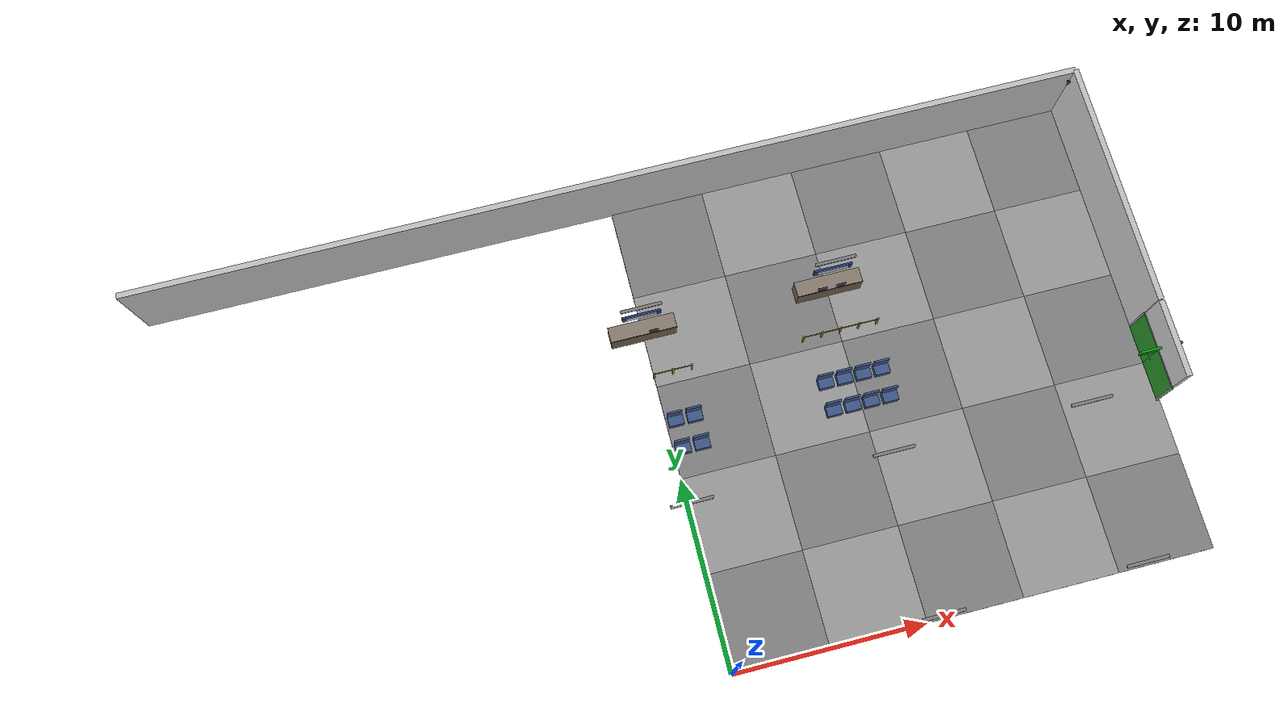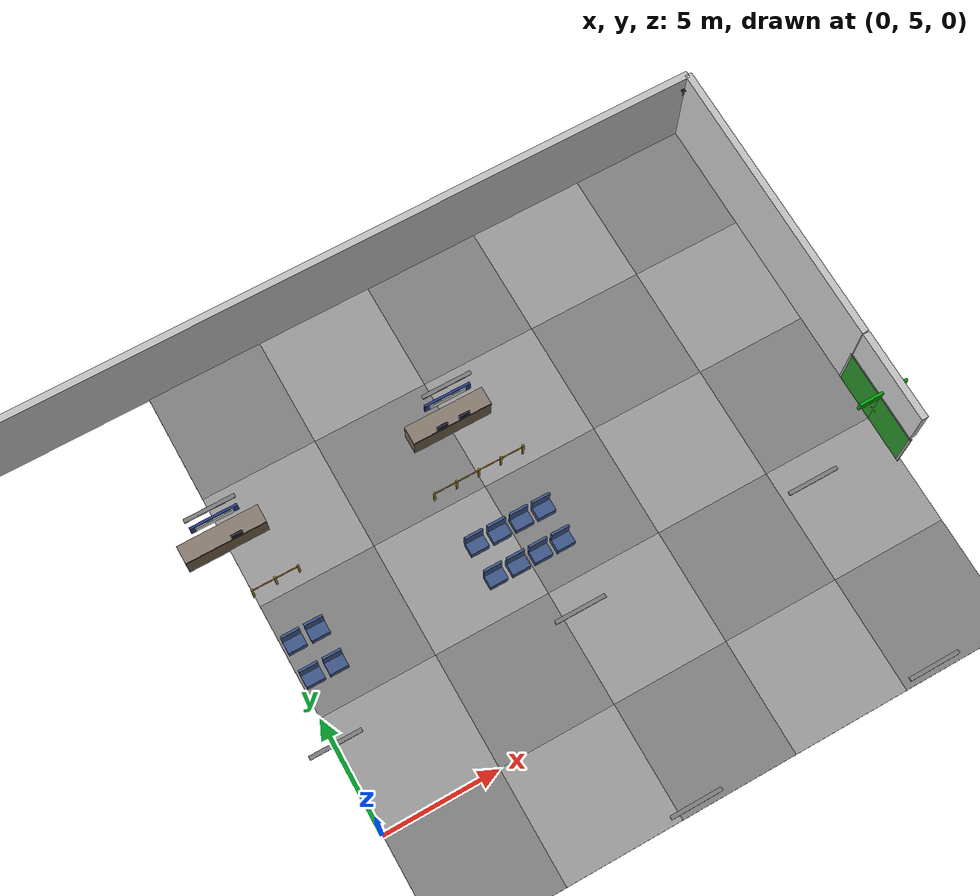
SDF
<sdf version="1.10">
 <world name="my_world">
  <model name="tile_5_5">
   <static>true</static>
   <pose>2.5 2.5 0.05 0 0 0</pose>
   <link name="link">
    <collision name="col">
     <geometry><box><size>5 5 0.1</size></box></geometry>
     <surface><friction><ode><mu>0.8</mu><mu2>0.8</mu2></ode></friction></surface>
    </collision>
    <visual name="vis">
     <geometry><box><size>5 5 0.1</size></box></geometry>
     <material><ambient>0.52 0.52 0.52 1</ambient><diffuse>0.52 0.52 0.52 1</diffuse></material>
    </visual>
   </link>
  </model>
  <model name="tile_5_6">
   <static>true</static>
   <pose>2.5 7.5 0.05 0 0 0</pose>
   <link name="link">
    <collision name="col">
     <geometry><box><size>5 5 0.1</size></box></geometry>
     <surface><friction><ode><mu>0.8</mu><mu2>0.8</mu2></ode></friction></surface>
    </collision>
    <visual name="vis">
     <geometry><box><size>5 5 0.1</size></box></geometry>
     <material><ambient>0.62 0.62 0.62 1</ambient><diffuse>0.62 0.62 0.62 1</diffuse></material>
    </visual>
   </link>
  </model>
  <model name="tile_5_7">
   <static>true</static>
   <pose>2.5 12.5 0.05 0 0 0</pose>
   <link name="link">
    <collision name="col">
     <geometry><box><size>5 5 0.1</size></box></geometry>
     <surface><friction><ode><mu>0.8</mu><mu2>0.8</mu2></ode></friction></surface>
    </collision>
    <visual name="vis">
     <geometry><box><size>5 5 0.1</size></box></geometry>
     <material><ambient>0.52 0.52 0.52 1</ambient><diffuse>0.52 0.52 0.52 1</diffuse></material>
    </visual>
   </link>
  </model>
  <model name="tile_5_8">
   <static>true</static>
   <pose>2.5 17.5 0.05 0 0 0</pose>
   <link name="link">
    <collision name="col">
     <geometry><box><size>5 5 0.1</size></box></geometry>
     <surface><friction><ode><mu>0.8</mu><mu2>0.8</mu2></ode></friction></surface>
    </collision>
    <visual name="vis">
     <geometry><box><size>5 5 0.1</size></box></geometry>
     <material><ambient>0.62 0.62 0.62 1</ambient><diffuse>0.62 0.62 0.62 1</diffuse></material>
    </visual>
   </link>
  </model>
  <model name="tile_5_9">
   <static>true</static>
   <pose>2.5 22.5 0.05 0 0 0</pose>
   <link name="link">
    <collision name="col">
     <geometry><box><size>5 5 0.1</size></box></geometry>
     <surface><friction><ode><mu>0.8</mu><mu2>0.8</mu2></ode></friction></surface>
    </collision>
    <visual name="vis">
     <geometry><box><size>5 5 0.1</size></box></geometry>
     <material><ambient>0.52 0.52 0.52 1</ambient><diffuse>0.52 0.52 0.52 1</diffuse></material>
    </visual>
   </link>
  </model>
  <model name="tile_6_5">
   <static>true</static>
   <pose>7.5 2.5 0.05 0 0 0</pose>
   <link name="link">
    <collision name="col">
     <geometry><box><size>5 5 0.1</size></box></geometry>
     <surface><friction><ode><mu>0.8</mu><mu2>0.8</mu2></ode></friction></surface>
    </collision>
    <visual name="vis">
     <geometry><box><size>5 5 0.1</size></box></geometry>
     <material><ambient>0.62 0.62 0.62 1</ambient><diffuse>0.62 0.62 0.62 1</diffuse></material>
    </visual>
   </link>
  </model>
  <model name="tile_6_6">
   <static>true</static>
   <pose>7.5 7.5 0.05 0 0 0</pose>
   <link name="link">
    <collision name="col">
     <geometry><box><size>5 5 0.1</size></box></geometry>
     <surface><friction><ode><mu>0.8</mu><mu2>0.8</mu2></ode></friction></surface>
    </collision>
    <visual name="vis">
     <geometry><box><size>5 5 0.1</size></box></geometry>
     <material><ambient>0.52 0.52 0.52 1</ambient><diffuse>0.52 0.52 0.52 1</diffuse></material>
    </visual>
   </link>
  </model>
  <model name="tile_6_7">
   <static>true</static>
   <pose>7.5 12.5 0.05 0 0 0</pose>
   <link name="link">
    <collision name="col">
     <geometry><box><size>5 5 0.1</size></box></geometry>
     <surface><friction><ode><mu>0.8</mu><mu2>0.8</mu2></ode></friction></surface>
    </collision>
    <visual name="vis">
     <geometry><box><size>5 5 0.1</size></box></geometry>
     <material><ambient>0.62 0.62 0.62 1</ambient><diffuse>0.62 0.62 0.62 1</diffuse></material>
    </visual>
   </link>
  </model>
  <model name="tile_6_8">
   <static>true</static>
   <pose>7.5 17.5 0.05 0 0 0</pose>
   <link name="link">
    <collision name="col">
     <geometry><box><size>5 5 0.1</size></box></geometry>
     <surface><friction><ode><mu>0.8</mu><mu2>0.8</mu2></ode></friction></surface>
    </collision>
    <visual name="vis">
     <geometry><box><size>5 5 0.1</size></box></geometry>
     <material><ambient>0.52 0.52 0.52 1</ambient><diffuse>0.52 0.52 0.52 1</diffuse></material>
    </visual>
   </link>
  </model>
  <model name="tile_6_9">
   <static>true</static>
   <pose>7.5 22.5 0.05 0 0 0</pose>
   <link name="link">
    <collision name="col">
     <geometry><box><size>5 5 0.1</size></box></geometry>
     <surface><friction><ode><mu>0.8</mu><mu2>0.8</mu2></ode></friction></surface>
    </collision>
    <visual name="vis">
     <geometry><box><size>5 5 0.1</size></box></geometry>
     <material><ambient>0.62 0.62 0.62 1</ambient><diffuse>0.62 0.62 0.62 1</diffuse></material>
    </visual>
   </link>
  </model>
  <model name="tile_7_5">
   <static>true</static>
   <pose>12.5 2.5 0.05 0 0 0</pose>
   <link name="link">
    <collision name="col">
     <geometry><box><size>5 5 0.1</size></box></geometry>
     <surface><friction><ode><mu>0.8</mu><mu2>0.8</mu2></ode></friction></surface>
    </collision>
    <visual name="vis">
     <geometry><box><size>5 5 0.1</size></box></geometry>
     <material><ambient>0.52 0.52 0.52 1</ambient><diffuse>0.52 0.52 0.52 1</diffuse></material>
    </visual>
   </link>
  </model>
  <model name="tile_7_6">
   <static>true</static>
   <pose>12.5 7.5 0.05 0 0 0</pose>
   <link name="link">
    <collision name="col">
     <geometry><box><size>5 5 0.1</size></box></geometry>
     <surface><friction><ode><mu>0.8</mu><mu2>0.8</mu2></ode></friction></surface>
    </collision>
    <visual name="vis">
     <geometry><box><size>5 5 0.1</size></box></geometry>
     <material><ambient>0.62 0.62 0.62 1</ambient><diffuse>0.62 0.62 0.62 1</diffuse></material>
    </visual>
   </link>
  </model>
  <model name="tile_7_7">
   <static>true</static>
   <pose>12.5 12.5 0.05 0 0 0</pose>
   <link name="link">
    <collision name="col">
     <geometry><box><size>5 5 0.1</size></box></geometry>
     <surface><friction><ode><mu>0.8</mu><mu2>0.8</mu2></ode></friction></surface>
    </collision>
    <visual name="vis">
     <geometry><box><size>5 5 0.1</size></box></geometry>
     <material><ambient>0.52 0.52 0.52 1</ambient><diffuse>0.52 0.52 0.52 1</diffuse></material>
    </visual>
   </link>
  </model>
  <model name="tile_7_8">
   <static>true</static>
   <pose>12.5 17.5 0.05 0 0 0</pose>
   <link name="link">
    <collision name="col">
     <geometry><box><size>5 5 0.1</size></box></geometry>
     <surface><friction><ode><mu>0.8</mu><mu2>0.8</mu2></ode></friction></surface>
    </collision>
    <visual name="vis">
     <geometry><box><size>5 5 0.1</size></box></geometry>
     <material><ambient>0.62 0.62 0.62 1</ambient><diffuse>0.62 0.62 0.62 1</diffuse></material>
    </visual>
   </link>
  </model>
  <model name="tile_7_9">
   <static>true</static>
   <pose>12.5 22.5 0.05 0 0 0</pose>
   <link name="link">
    <collision name="col">
     <geometry><box><size>5 5 0.1</size></box></geometry>
     <surface><friction><ode><mu>0.8</mu><mu2>0.8</mu2></ode></friction></surface>
    </collision>
    <visual name="vis">
     <geometry><box><size>5 5 0.1</size></box></geometry>
     <material><ambient>0.52 0.52 0.52 1</ambient><diffuse>0.52 0.52 0.52 1</diffuse></material>
    </visual>
   </link>
  </model>
  <model name="tile_8_5">
   <static>true</static>
   <pose>17.5 2.5 0.05 0 0 0</pose>
   <link name="link">
    <collision name="col">
     <geometry><box><size>5 5 0.1</size></box></geometry>
     <surface><friction><ode><mu>0.8</mu><mu2>0.8</mu2></ode></friction></surface>
    </collision>
    <visual name="vis">
     <geometry><box><size>5 5 0.1</size></box></geometry>
     <material><ambient>0.62 0.62 0.62 1</ambient><diffuse>0.62 0.62 0.62 1</diffuse></material>
    </visual>
   </link>
  </model>
  <model name="tile_8_6">
   <static>true</static>
   <pose>17.5 7.5 0.05 0 0 0</pose>
   <link name="link">
    <collision name="col">
     <geometry><box><size>5 5 0.1</size></box></geometry>
     <surface><friction><ode><mu>0.8</mu><mu2>0.8</mu2></ode></friction></surface>
    </collision>
    <visual name="vis">
     <geometry><box><size>5 5 0.1</size></box></geometry>
     <material><ambient>0.52 0.52 0.52 1</ambient><diffuse>0.52 0.52 0.52 1</diffuse></material>
    </visual>
   </link>
  </model>
  <model name="tile_8_7">
   <static>true</static>
   <pose>17.5 12.5 0.05 0 0 0</pose>
   <link name="link">
    <collision name="col">
     <geometry><box><size>5 5 0.1</size></box></geometry>
     <surface><friction><ode><mu>0.8</mu><mu2>0.8</mu2></ode></friction></surface>
    </collision>
    <visual name="vis">
     <geometry><box><size>5 5 0.1</size></box></geometry>
     <material><ambient>0.62 0.62 0.62 1</ambient><diffuse>0.62 0.62 0.62 1</diffuse></material>
    </visual>
   </link>
  </model>
  <model name="tile_8_8">
   <static>true</static>
   <pose>17.5 17.5 0.05 0 0 0</pose>
   <link name="link">
    <collision name="col">
     <geometry><box><size>5 5 0.1</size></box></geometry>
     <surface><friction><ode><mu>0.8</mu><mu2>0.8</mu2></ode></friction></surface>
    </collision>
    <visual name="vis">
     <geometry><box><size>5 5 0.1</size></box></geometry>
     <material><ambient>0.52 0.52 0.52 1</ambient><diffuse>0.52 0.52 0.52 1</diffuse></material>
    </visual>
   </link>
  </model>
  <model name="tile_8_9">
   <static>true</static>
   <pose>17.5 22.5 0.05 0 0 0</pose>
   <link name="link">
    <collision name="col">
     <geometry><box><size>5 5 0.1</size></box></geometry>
     <surface><friction><ode><mu>0.8</mu><mu2>0.8</mu2></ode></friction></surface>
    </collision>
    <visual name="vis">
     <geometry><box><size>5 5 0.1</size></box></geometry>
     <material><ambient>0.62 0.62 0.62 1</ambient><diffuse>0.62 0.62 0.62 1</diffuse></material>
    </visual>
   </link>
  </model>
  <model name="tile_9_5">
   <static>true</static>
   <pose>22.5 2.5 0.05 0 0 0</pose>
   <link name="link">
    <collision name="col">
     <geometry><box><size>5 5 0.1</size></box></geometry>
     <surface><friction><ode><mu>0.8</mu><mu2>0.8</mu2></ode></friction></surface>
    </collision>
    <visual name="vis">
     <geometry><box><size>5 5 0.1</size></box></geometry>
     <material><ambient>0.52 0.52 0.52 1</ambient><diffuse>0.52 0.52 0.52 1</diffuse></material>
    </visual>
   </link>
  </model>
  <model name="tile_9_6">
   <static>true</static>
   <pose>22.5 7.5 0.05 0 0 0</pose>
   <link name="link">
    <collision name="col">
     <geometry><box><size>5 5 0.1</size></box></geometry>
     <surface><friction><ode><mu>0.8</mu><mu2>0.8</mu2></ode></friction></surface>
    </collision>
    <visual name="vis">
     <geometry><box><size>5 5 0.1</size></box></geometry>
     <material><ambient>0.62 0.62 0.62 1</ambient><diffuse>0.62 0.62 0.62 1</diffuse></material>
    </visual>
   </link>
  </model>
  <model name="tile_9_7">
   <static>true</static>
   <pose>22.5 12.5 0.05 0 0 0</pose>
   <link name="link">
    <collision name="col">
     <geometry><box><size>5 5 0.1</size></box></geometry>
     <surface><friction><ode><mu>0.8</mu><mu2>0.8</mu2></ode></friction></surface>
    </collision>
    <visual name="vis">
     <geometry><box><size>5 5 0.1</size></box></geometry>
     <material><ambient>0.52 0.52 0.52 1</ambient><diffuse>0.52 0.52 0.52 1</diffuse></material>
    </visual>
   </link>
  </model>
  <model name="tile_9_8">
   <static>true</static>
   <pose>22.5 17.5 0.05 0 0 0</pose>
   <link name="link">
    <collision name="col">
     <geometry><box><size>5 5 0.1</size></box></geometry>
     <surface><friction><ode><mu>0.8</mu><mu2>0.8</mu2></ode></friction></surface>
    </collision>
    <visual name="vis">
     <geometry><box><size>5 5 0.1</size></box></geometry>
     <material><ambient>0.62 0.62 0.62 1</ambient><diffuse>0.62 0.62 0.62 1</diffuse></material>
    </visual>
   </link>
  </model>
  <model name="tile_9_9">
   <static>true</static>
   <pose>22.5 22.5 0.05 0 0 0</pose>
   <link name="link">
    <collision name="col">
     <geometry><box><size>5 5 0.1</size></box></geometry>
     <surface><friction><ode><mu>0.8</mu><mu2>0.8</mu2></ode></friction></surface>
    </collision>
    <visual name="vis">
     <geometry><box><size>5 5 0.1</size></box></geometry>
     <material><ambient>0.52 0.52 0.52 1</ambient><diffuse>0.52 0.52 0.52 1</diffuse></material>
    </visual>
   </link>
  </model>
  <model name="wall_north">
   <static>true</static>
   <pose>0 25 2.25 0 0 0</pose>
   <link name="link">
    <collision name="col"><geometry><box><size>50 0.3 4.5</size></box></geometry></collision>
    <visual name="vis">
     <geometry><box><size>50 0.3 4.5</size></box></geometry>
     <material><ambient>0.78 0.78 0.78 1</ambient><diffuse>0.78 0.78 0.78 1</diffuse></material>
    </visual>
   </link>
  </model>
  <model name="wall_east_n">
   <static>true</static>
   <pose>25 18.525 2.25 0 0 0</pose>
   <link name="link">
    <collision name="col"><geometry><box><size>0.3 12.95 4.5</size></box></geometry></collision>
    <visual name="vis">
     <geometry><box><size>0.3 12.95 4.5</size></box></geometry>
     <material><ambient>0.78 0.78 0.78 1</ambient><diffuse>0.78 0.78 0.78 1</diffuse></material>
    </visual>
   </link>
  </model>
  <model name="wall_east_top">
   <static>true</static>
   <pose>25 10 3.45 0 0 0</pose>
   <link name="link">
    <collision name="col"><geometry><box><size>0.3 4 2.1</size></box></geometry></collision>
    <visual name="vis">
     <geometry><box><size>0.3 4 2.1</size></box></geometry>
     <material><ambient>0.78 0.78 0.78 1</ambient><diffuse>0.78 0.78 0.78 1</diffuse></material>
    </visual>
   </link>
  </model>
  <model name="exit_east_door_l">
   <static>true</static>
   <pose>24.87 9.0 1.2 0 0 0</pose>
   <link name="link">
    <collision name="col"><geometry><box><size>0.06 2.0 2.4</size></box></geometry></collision>
    <visual name="vis">
     <geometry><box><size>0.06 2.0 2.4</size></box></geometry>
     <material><ambient>0.15 0.55 0.15 1</ambient><diffuse>0.15 0.55 0.15 1</diffuse></material>
    </visual>
   </link>
  </model>
  <model name="exit_east_door_r">
   <static>true</static>
   <pose>24.87 11.0 1.2 0 0 0</pose>
   <link name="link">
    <collision name="col"><geometry><box><size>0.06 2.0 2.4</size></box></geometry></collision>
    <visual name="vis">
     <geometry><box><size>0.06 2.0 2.4</size></box></geometry>
     <material><ambient>0.15 0.55 0.15 1</ambient><diffuse>0.15 0.55 0.15 1</diffuse></material>
    </visual>
   </link>
  </model>
  <model name="exit_east_handle_l">
   <static>true</static>
   <pose>24.87 9.9 1.1 0 0 0</pose>
   <link name="link">
    <visual name="vis">
     <geometry><box><size>0.08 0.06 0.06</size></box></geometry>
     <material><ambient>0.7 0.6 0.1 1</ambient><diffuse>0.7 0.6 0.1 1</diffuse></material>
    </visual>
   </link>
  </model>
  <model name="exit_east_handle_r">
   <static>true</static>
   <pose>24.87 10.1 1.1 0 0 0</pose>
   <link name="link">
    <visual name="vis">
     <geometry><box><size>0.08 0.06 0.06</size></box></geometry>
     <material><ambient>0.7 0.6 0.1 1</ambient><diffuse>0.7 0.6 0.1 1</diffuse></material>
    </visual>
   </link>
  </model>
  <model name="exit_east_sign">
   <static>true</static>
   <pose>24.87 10 2.7 0 0 0</pose>
   <link name="link">
    <visual name="vis">
     <geometry><box><size>2.2 0.12 0.45</size></box></geometry>
     <material><ambient>0.05 0.65 0.05 1</ambient><diffuse>0.05 0.65 0.05 1</diffuse></material>
    </visual>
   </link>
  </model>
  <model name="exit_east_sign_txt">
   <static>true</static>
   <pose>24.87 10 2.7 0 0 0</pose>
   <link name="link">
    <visual name="vis">
     <geometry><box><size>1.8 0.05 0.28</size></box></geometry>
     <material><ambient>0.92 0.92 0.92 1</ambient><diffuse>0.92 0.92 0.92 1</diffuse></material>
    </visual>
   </link>
  </model>
  <model name="exit_east_frame_l">
   <static>true</static>
   <pose>24.87 7.95 1.2 0 0 0</pose>
   <link name="link">
    <collision name="col"><geometry><box><size>0.06 0.1 2.4</size></box></geometry></collision>
    <visual name="vis">
     <geometry><box><size>0.06 0.1 2.4</size></box></geometry>
     <material><ambient>0.6 0.6 0.6 1</ambient><diffuse>0.6 0.6 0.6 1</diffuse></material>
    </visual>
   </link>
  </model>
  <model name="exit_east_frame_r">
   <static>true</static>
   <pose>24.87 12.05 1.2 0 0 0</pose>
   <link name="link">
    <collision name="col"><geometry><box><size>0.06 0.1 2.4</size></box></geometry></collision>
    <visual name="vis">
     <geometry><box><size>0.06 0.1 2.4</size></box></geometry>
     <material><ambient>0.6 0.6 0.6 1</ambient><diffuse>0.6 0.6 0.6 1</diffuse></material>
    </visual>
   </link>
  </model>
  <model name="exit_east_frame_t">
   <static>true</static>
   <pose>24.87 10 2.45 0 0 0</pose>
   <link name="link">
    <visual name="vis">
     <geometry><box><size>0.06 4.2 0.1</size></box></geometry>
     <material><ambient>0.6 0.6 0.6 1</ambient><diffuse>0.6 0.6 0.6 1</diffuse></material>
    </visual>
   </link>
  </model>
  <model name="gate_a2_counter">
   <static>true</static>
   <pose>0 18 0.55 0 0 0</pose>
   <link name="link">
    <collision name="col"><geometry><box><size>3.5 0.8 1.1</size></box></geometry></collision>
    <visual name="vis">
     <geometry><box><size>3.5 0.8 1.1</size></box></geometry>
     <material><ambient>0.45 0.38 0.3 1</ambient><diffuse>0.45 0.38 0.3 1</diffuse></material>
    </visual>
   </link>
  </model>
  <model name="gate_a2_counter_top">
   <static>true</static>
   <pose>0 18 1.15 0 0 0</pose>
   <link name="link">
    <collision name="col"><geometry><box><size>3.5 0.8 0.08</size></box></geometry></collision>
    <visual name="vis">
     <geometry><box><size>3.5 0.8 0.08</size></box></geometry>
     <material><ambient>0.55 0.5 0.45 1</ambient><diffuse>0.55 0.5 0.45 1</diffuse></material>
    </visual>
   </link>
  </model>
  <model name="gate_a2_monitor2">
   <static>true</static>
   <pose>0.5 17.55 1.6 0 0 0</pose>
   <link name="link">
    <visual name="vis">
     <geometry><box><size>0.5 0.05 0.4</size></box></geometry>
     <material><ambient>0.1 0.1 0.15 1</ambient><diffuse>0.1 0.1 0.15 1</diffuse></material>
    </visual>
   </link>
  </model>
  <model name="gate_a2_sign">
   <static>true</static>
   <pose>0 18 3.2 0 0 0</pose>
   <link name="link">
    <visual name="vis">
     <geometry><box><size>2.0 0.1 0.5</size></box></geometry>
     <material><ambient>0.15 0.25 0.55 1</ambient><diffuse>0.15 0.25 0.55 1</diffuse></material>
    </visual>
   </link>
  </model>
  <model name="gate_a2_sign_text">
   <static>true</static>
   <pose>0 17.94 3.2 0 0 0</pose>
   <link name="link">
    <visual name="vis">
     <geometry><box><size>1.6 0.05 0.3</size></box></geometry>
     <material><ambient>0.9 0.9 0.9 1</ambient><diffuse>0.9 0.9 0.9 1</diffuse></material>
    </visual>
   </link>
  </model>
  <model name="gate_a2_post_0">
   <static>true</static>
   <pose>0.0 15.5 0.5 0 0 0</pose>
   <link name="link">
    <collision name="col"><geometry><box><size>0.08 0.08 1.0</size></box></geometry></collision>
    <visual name="vis">
     <geometry><box><size>0.08 0.08 1.0</size></box></geometry>
     <material><ambient>0.7 0.6 0.2 1</ambient><diffuse>0.7 0.6 0.2 1</diffuse></material>
    </visual>
   </link>
  </model>
  <model name="gate_a2_post_10">
   <static>true</static>
   <pose>1.0 15.5 0.5 0 0 0</pose>
   <link name="link">
    <collision name="col"><geometry><box><size>0.08 0.08 1.0</size></box></geometry></collision>
    <visual name="vis">
     <geometry><box><size>0.08 0.08 1.0</size></box></geometry>
     <material><ambient>0.7 0.6 0.2 1</ambient><diffuse>0.7 0.6 0.2 1</diffuse></material>
    </visual>
   </link>
  </model>
  <model name="gate_a2_post_20">
   <static>true</static>
   <pose>2.0 15.5 0.5 0 0 0</pose>
   <link name="link">
    <collision name="col"><geometry><box><size>0.08 0.08 1.0</size></box></geometry></collision>
    <visual name="vis">
     <geometry><box><size>0.08 0.08 1.0</size></box></geometry>
     <material><ambient>0.7 0.6 0.2 1</ambient><diffuse>0.7 0.6 0.2 1</diffuse></material>
    </visual>
   </link>
  </model>
  <model name="gate_a2_rope_2">
   <static>true</static>
   <pose>0.5 15.5 0.85 0 0 0</pose>
   <link name="link">
    <visual name="vis">
     <geometry><box><size>1.0 0.04 0.04</size></box></geometry>
     <material><ambient>0.6 0.4 0.1 1</ambient><diffuse>0.6 0.4 0.1 1</diffuse></material>
    </visual>
   </link>
  </model>
  <model name="gate_a2_rope_3">
   <static>true</static>
   <pose>1.5 15.5 0.85 0 0 0</pose>
   <link name="link">
    <visual name="vis">
     <geometry><box><size>1.0 0.04 0.04</size></box></geometry>
     <material><ambient>0.6 0.4 0.1 1</ambient><diffuse>0.6 0.4 0.1 1</diffuse></material>
    </visual>
   </link>
  </model>
  <model name="gate_a2_seat_r0_c2">
   <static>true</static>
   <pose>0.5 13 0.25 0 0 0</pose>
   <link name="link">
    <collision name="col"><geometry><box><size>0.8 0.6 0.5</size></box></geometry></collision>
    <visual name="vis">
     <geometry><box><size>0.8 0.6 0.5</size></box></geometry>
     <material><ambient>0.25 0.35 0.55 1</ambient><diffuse>0.25 0.35 0.55 1</diffuse></material>
    </visual>
   </link>
  </model>
  <model name="gate_a2_seat_r0_c2_back">
   <static>true</static>
   <pose>0.5 13.25 0.7 0 0 0</pose>
   <link name="link">
    <collision name="col"><geometry><box><size>0.8 0.1 0.9</size></box></geometry></collision>
    <visual name="vis">
     <geometry><box><size>0.8 0.1 0.9</size></box></geometry>
     <material><ambient>0.25 0.35 0.55 1</ambient><diffuse>0.25 0.35 0.55 1</diffuse></material>
    </visual>
   </link>
  </model>
  <model name="gate_a2_seat_r0_c3">
   <static>true</static>
   <pose>1.5 13 0.25 0 0 0</pose>
   <link name="link">
    <collision name="col"><geometry><box><size>0.8 0.6 0.5</size></box></geometry></collision>
    <visual name="vis">
     <geometry><box><size>0.8 0.6 0.5</size></box></geometry>
     <material><ambient>0.25 0.35 0.55 1</ambient><diffuse>0.25 0.35 0.55 1</diffuse></material>
    </visual>
   </link>
  </model>
  <model name="gate_a2_seat_r0_c3_back">
   <static>true</static>
   <pose>1.5 13.25 0.7 0 0 0</pose>
   <link name="link">
    <collision name="col"><geometry><box><size>0.8 0.1 0.9</size></box></geometry></collision>
    <visual name="vis">
     <geometry><box><size>0.8 0.1 0.9</size></box></geometry>
     <material><ambient>0.25 0.35 0.55 1</ambient><diffuse>0.25 0.35 0.55 1</diffuse></material>
    </visual>
   </link>
  </model>
  <model name="gate_a2_seat_r1_c2">
   <static>true</static>
   <pose>0.5 11.5 0.25 0 0 0</pose>
   <link name="link">
    <collision name="col"><geometry><box><size>0.8 0.6 0.5</size></box></geometry></collision>
    <visual name="vis">
     <geometry><box><size>0.8 0.6 0.5</size></box></geometry>
     <material><ambient>0.25 0.35 0.55 1</ambient><diffuse>0.25 0.35 0.55 1</diffuse></material>
    </visual>
   </link>
  </model>
  <model name="gate_a2_seat_r1_c2_back">
   <static>true</static>
   <pose>0.5 11.75 0.7 0 0 0</pose>
   <link name="link">
    <collision name="col"><geometry><box><size>0.8 0.1 0.9</size></box></geometry></collision>
    <visual name="vis">
     <geometry><box><size>0.8 0.1 0.9</size></box></geometry>
     <material><ambient>0.25 0.35 0.55 1</ambient><diffuse>0.25 0.35 0.55 1</diffuse></material>
    </visual>
   </link>
  </model>
  <model name="gate_a2_seat_r1_c3">
   <static>true</static>
   <pose>1.5 11.5 0.25 0 0 0</pose>
   <link name="link">
    <collision name="col"><geometry><box><size>0.8 0.6 0.5</size></box></geometry></collision>
    <visual name="vis">
     <geometry><box><size>0.8 0.6 0.5</size></box></geometry>
     <material><ambient>0.25 0.35 0.55 1</ambient><diffuse>0.25 0.35 0.55 1</diffuse></material>
    </visual>
   </link>
  </model>
  <model name="gate_a2_seat_r1_c3_back">
   <static>true</static>
   <pose>1.5 11.75 0.7 0 0 0</pose>
   <link name="link">
    <collision name="col"><geometry><box><size>0.8 0.1 0.9</size></box></geometry></collision>
    <visual name="vis">
     <geometry><box><size>0.8 0.1 0.9</size></box></geometry>
     <material><ambient>0.25 0.35 0.55 1</ambient><diffuse>0.25 0.35 0.55 1</diffuse></material>
    </visual>
   </link>
  </model>
  <model name="gate_a3_counter">
   <static>true</static>
   <pose>10 18 0.55 0 0 0</pose>
   <link name="link">
    <collision name="col"><geometry><box><size>3.5 0.8 1.1</size></box></geometry></collision>
    <visual name="vis">
     <geometry><box><size>3.5 0.8 1.1</size></box></geometry>
     <material><ambient>0.45 0.38 0.3 1</ambient><diffuse>0.45 0.38 0.3 1</diffuse></material>
    </visual>
   </link>
  </model>
  <model name="gate_a3_counter_top">
   <static>true</static>
   <pose>10 18 1.15 0 0 0</pose>
   <link name="link">
    <collision name="col"><geometry><box><size>3.5 0.8 0.08</size></box></geometry></collision>
    <visual name="vis">
     <geometry><box><size>3.5 0.8 0.08</size></box></geometry>
     <material><ambient>0.55 0.5 0.45 1</ambient><diffuse>0.55 0.5 0.45 1</diffuse></material>
    </visual>
   </link>
  </model>
  <model name="gate_a3_monitor">
   <static>true</static>
   <pose>9.5 17.55 1.6 0 0 0</pose>
   <link name="link">
    <visual name="vis">
     <geometry><box><size>0.5 0.05 0.4</size></box></geometry>
     <material><ambient>0.1 0.1 0.15 1</ambient><diffuse>0.1 0.1 0.15 1</diffuse></material>
    </visual>
   </link>
  </model>
  <model name="gate_a3_monitor2">
   <static>true</static>
   <pose>10.5 17.55 1.6 0 0 0</pose>
   <link name="link">
    <visual name="vis">
     <geometry><box><size>0.5 0.05 0.4</size></box></geometry>
     <material><ambient>0.1 0.1 0.15 1</ambient><diffuse>0.1 0.1 0.15 1</diffuse></material>
    </visual>
   </link>
  </model>
  <model name="gate_a3_sign">
   <static>true</static>
   <pose>10 18 3.2 0 0 0</pose>
   <link name="link">
    <visual name="vis">
     <geometry><box><size>2.0 0.1 0.5</size></box></geometry>
     <material><ambient>0.15 0.25 0.55 1</ambient><diffuse>0.15 0.25 0.55 1</diffuse></material>
    </visual>
   </link>
  </model>
  <model name="gate_a3_sign_text">
   <static>true</static>
   <pose>10 17.94 3.2 0 0 0</pose>
   <link name="link">
    <visual name="vis">
     <geometry><box><size>1.6 0.05 0.3</size></box></geometry>
     <material><ambient>0.9 0.9 0.9 1</ambient><diffuse>0.9 0.9 0.9 1</diffuse></material>
    </visual>
   </link>
  </model>
  <model name="gate_a3_post_-20">
   <static>true</static>
   <pose>8.0 15.5 0.5 0 0 0</pose>
   <link name="link">
    <collision name="col"><geometry><box><size>0.08 0.08 1.0</size></box></geometry></collision>
    <visual name="vis">
     <geometry><box><size>0.08 0.08 1.0</size></box></geometry>
     <material><ambient>0.7 0.6 0.2 1</ambient><diffuse>0.7 0.6 0.2 1</diffuse></material>
    </visual>
   </link>
  </model>
  <model name="gate_a3_post_-10">
   <static>true</static>
   <pose>9.0 15.5 0.5 0 0 0</pose>
   <link name="link">
    <collision name="col"><geometry><box><size>0.08 0.08 1.0</size></box></geometry></collision>
    <visual name="vis">
     <geometry><box><size>0.08 0.08 1.0</size></box></geometry>
     <material><ambient>0.7 0.6 0.2 1</ambient><diffuse>0.7 0.6 0.2 1</diffuse></material>
    </visual>
   </link>
  </model>
  <model name="gate_a3_post_0">
   <static>true</static>
   <pose>10.0 15.5 0.5 0 0 0</pose>
   <link name="link">
    <collision name="col"><geometry><box><size>0.08 0.08 1.0</size></box></geometry></collision>
    <visual name="vis">
     <geometry><box><size>0.08 0.08 1.0</size></box></geometry>
     <material><ambient>0.7 0.6 0.2 1</ambient><diffuse>0.7 0.6 0.2 1</diffuse></material>
    </visual>
   </link>
  </model>
  <model name="gate_a3_post_10">
   <static>true</static>
   <pose>11.0 15.5 0.5 0 0 0</pose>
   <link name="link">
    <collision name="col"><geometry><box><size>0.08 0.08 1.0</size></box></geometry></collision>
    <visual name="vis">
     <geometry><box><size>0.08 0.08 1.0</size></box></geometry>
     <material><ambient>0.7 0.6 0.2 1</ambient><diffuse>0.7 0.6 0.2 1</diffuse></material>
    </visual>
   </link>
  </model>
  <model name="gate_a3_post_20">
   <static>true</static>
   <pose>12.0 15.5 0.5 0 0 0</pose>
   <link name="link">
    <collision name="col"><geometry><box><size>0.08 0.08 1.0</size></box></geometry></collision>
    <visual name="vis">
     <geometry><box><size>0.08 0.08 1.0</size></box></geometry>
     <material><ambient>0.7 0.6 0.2 1</ambient><diffuse>0.7 0.6 0.2 1</diffuse></material>
    </visual>
   </link>
  </model>
  <model name="gate_a3_rope_0">
   <static>true</static>
   <pose>8.5 15.5 0.85 0 0 0</pose>
   <link name="link">
    <visual name="vis">
     <geometry><box><size>1.0 0.04 0.04</size></box></geometry>
     <material><ambient>0.6 0.4 0.1 1</ambient><diffuse>0.6 0.4 0.1 1</diffuse></material>
    </visual>
   </link>
  </model>
  <model name="gate_a3_rope_1">
   <static>true</static>
   <pose>9.5 15.5 0.85 0 0 0</pose>
   <link name="link">
    <visual name="vis">
     <geometry><box><size>1.0 0.04 0.04</size></box></geometry>
     <material><ambient>0.6 0.4 0.1 1</ambient><diffuse>0.6 0.4 0.1 1</diffuse></material>
    </visual>
   </link>
  </model>
  <model name="gate_a3_rope_2">
   <static>true</static>
   <pose>10.5 15.5 0.85 0 0 0</pose>
   <link name="link">
    <visual name="vis">
     <geometry><box><size>1.0 0.04 0.04</size></box></geometry>
     <material><ambient>0.6 0.4 0.1 1</ambient><diffuse>0.6 0.4 0.1 1</diffuse></material>
    </visual>
   </link>
  </model>
  <model name="gate_a3_rope_3">
   <static>true</static>
   <pose>11.5 15.5 0.85 0 0 0</pose>
   <link name="link">
    <visual name="vis">
     <geometry><box><size>1.0 0.04 0.04</size></box></geometry>
     <material><ambient>0.6 0.4 0.1 1</ambient><diffuse>0.6 0.4 0.1 1</diffuse></material>
    </visual>
   </link>
  </model>
  <model name="gate_a3_seat_r0_c0">
   <static>true</static>
   <pose>8.5 13 0.25 0 0 0</pose>
   <link name="link">
    <collision name="col"><geometry><box><size>0.8 0.6 0.5</size></box></geometry></collision>
    <visual name="vis">
     <geometry><box><size>0.8 0.6 0.5</size></box></geometry>
     <material><ambient>0.25 0.35 0.55 1</ambient><diffuse>0.25 0.35 0.55 1</diffuse></material>
    </visual>
   </link>
  </model>
  <model name="gate_a3_seat_r0_c0_back">
   <static>true</static>
   <pose>8.5 13.25 0.7 0 0 0</pose>
   <link name="link">
    <collision name="col"><geometry><box><size>0.8 0.1 0.9</size></box></geometry></collision>
    <visual name="vis">
     <geometry><box><size>0.8 0.1 0.9</size></box></geometry>
     <material><ambient>0.25 0.35 0.55 1</ambient><diffuse>0.25 0.35 0.55 1</diffuse></material>
    </visual>
   </link>
  </model>
  <model name="gate_a3_seat_r0_c1">
   <static>true</static>
   <pose>9.5 13 0.25 0 0 0</pose>
   <link name="link">
    <collision name="col"><geometry><box><size>0.8 0.6 0.5</size></box></geometry></collision>
    <visual name="vis">
     <geometry><box><size>0.8 0.6 0.5</size></box></geometry>
     <material><ambient>0.25 0.35 0.55 1</ambient><diffuse>0.25 0.35 0.55 1</diffuse></material>
    </visual>
   </link>
  </model>
  <model name="gate_a3_seat_r0_c1_back">
   <static>true</static>
   <pose>9.5 13.25 0.7 0 0 0</pose>
   <link name="link">
    <collision name="col"><geometry><box><size>0.8 0.1 0.9</size></box></geometry></collision>
    <visual name="vis">
     <geometry><box><size>0.8 0.1 0.9</size></box></geometry>
     <material><ambient>0.25 0.35 0.55 1</ambient><diffuse>0.25 0.35 0.55 1</diffuse></material>
    </visual>
   </link>
  </model>
  <model name="gate_a3_seat_r0_c2">
   <static>true</static>
   <pose>10.5 13 0.25 0 0 0</pose>
   <link name="link">
    <collision name="col"><geometry><box><size>0.8 0.6 0.5</size></box></geometry></collision>
    <visual name="vis">
     <geometry><box><size>0.8 0.6 0.5</size></box></geometry>
     <material><ambient>0.25 0.35 0.55 1</ambient><diffuse>0.25 0.35 0.55 1</diffuse></material>
    </visual>
   </link>
  </model>
  <model name="gate_a3_seat_r0_c2_back">
   <static>true</static>
   <pose>10.5 13.25 0.7 0 0 0</pose>
   <link name="link">
    <collision name="col"><geometry><box><size>0.8 0.1 0.9</size></box></geometry></collision>
    <visual name="vis">
     <geometry><box><size>0.8 0.1 0.9</size></box></geometry>
     <material><ambient>0.25 0.35 0.55 1</ambient><diffuse>0.25 0.35 0.55 1</diffuse></material>
    </visual>
   </link>
  </model>
  <model name="gate_a3_seat_r0_c3">
   <static>true</static>
   <pose>11.5 13 0.25 0 0 0</pose>
   <link name="link">
    <collision name="col"><geometry><box><size>0.8 0.6 0.5</size></box></geometry></collision>
    <visual name="vis">
     <geometry><box><size>0.8 0.6 0.5</size></box></geometry>
     <material><ambient>0.25 0.35 0.55 1</ambient><diffuse>0.25 0.35 0.55 1</diffuse></material>
    </visual>
   </link>
  </model>
  <model name="gate_a3_seat_r0_c3_back">
   <static>true</static>
   <pose>11.5 13.25 0.7 0 0 0</pose>
   <link name="link">
    <collision name="col"><geometry><box><size>0.8 0.1 0.9</size></box></geometry></collision>
    <visual name="vis">
     <geometry><box><size>0.8 0.1 0.9</size></box></geometry>
     <material><ambient>0.25 0.35 0.55 1</ambient><diffuse>0.25 0.35 0.55 1</diffuse></material>
    </visual>
   </link>
  </model>
  <model name="gate_a3_seat_r1_c0">
   <static>true</static>
   <pose>8.5 11.5 0.25 0 0 0</pose>
   <link name="link">
    <collision name="col"><geometry><box><size>0.8 0.6 0.5</size></box></geometry></collision>
    <visual name="vis">
     <geometry><box><size>0.8 0.6 0.5</size></box></geometry>
     <material><ambient>0.25 0.35 0.55 1</ambient><diffuse>0.25 0.35 0.55 1</diffuse></material>
    </visual>
   </link>
  </model>
  <model name="gate_a3_seat_r1_c0_back">
   <static>true</static>
   <pose>8.5 11.75 0.7 0 0 0</pose>
   <link name="link">
    <collision name="col"><geometry><box><size>0.8 0.1 0.9</size></box></geometry></collision>
    <visual name="vis">
     <geometry><box><size>0.8 0.1 0.9</size></box></geometry>
     <material><ambient>0.25 0.35 0.55 1</ambient><diffuse>0.25 0.35 0.55 1</diffuse></material>
    </visual>
   </link>
  </model>
  <model name="gate_a3_seat_r1_c1">
   <static>true</static>
   <pose>9.5 11.5 0.25 0 0 0</pose>
   <link name="link">
    <collision name="col"><geometry><box><size>0.8 0.6 0.5</size></box></geometry></collision>
    <visual name="vis">
     <geometry><box><size>0.8 0.6 0.5</size></box></geometry>
     <material><ambient>0.25 0.35 0.55 1</ambient><diffuse>0.25 0.35 0.55 1</diffuse></material>
    </visual>
   </link>
  </model>
  <model name="gate_a3_seat_r1_c1_back">
   <static>true</static>
   <pose>9.5 11.75 0.7 0 0 0</pose>
   <link name="link">
    <collision name="col"><geometry><box><size>0.8 0.1 0.9</size></box></geometry></collision>
    <visual name="vis">
     <geometry><box><size>0.8 0.1 0.9</size></box></geometry>
     <material><ambient>0.25 0.35 0.55 1</ambient><diffuse>0.25 0.35 0.55 1</diffuse></material>
    </visual>
   </link>
  </model>
  <model name="gate_a3_seat_r1_c2">
   <static>true</static>
   <pose>10.5 11.5 0.25 0 0 0</pose>
   <link name="link">
    <collision name="col"><geometry><box><size>0.8 0.6 0.5</size></box></geometry></collision>
    <visual name="vis">
     <geometry><box><size>0.8 0.6 0.5</size></box></geometry>
     <material><ambient>0.25 0.35 0.55 1</ambient><diffuse>0.25 0.35 0.55 1</diffuse></material>
    </visual>
   </link>
  </model>
  <model name="gate_a3_seat_r1_c2_back">
   <static>true</static>
   <pose>10.5 11.75 0.7 0 0 0</pose>
   <link name="link">
    <collision name="col"><geometry><box><size>0.8 0.1 0.9</size></box></geometry></collision>
    <visual name="vis">
     <geometry><box><size>0.8 0.1 0.9</size></box></geometry>
     <material><ambient>0.25 0.35 0.55 1</ambient><diffuse>0.25 0.35 0.55 1</diffuse></material>
    </visual>
   </link>
  </model>
  <model name="gate_a3_seat_r1_c3">
   <static>true</static>
   <pose>11.5 11.5 0.25 0 0 0</pose>
   <link name="link">
    <collision name="col"><geometry><box><size>0.8 0.6 0.5</size></box></geometry></collision>
    <visual name="vis">
     <geometry><box><size>0.8 0.6 0.5</size></box></geometry>
     <material><ambient>0.25 0.35 0.55 1</ambient><diffuse>0.25 0.35 0.55 1</diffuse></material>
    </visual>
   </link>
  </model>
  <model name="gate_a3_seat_r1_c3_back">
   <static>true</static>
   <pose>11.5 11.75 0.7 0 0 0</pose>
   <link name="link">
    <collision name="col"><geometry><box><size>0.8 0.1 0.9</size></box></geometry></collision>
    <visual name="vis">
     <geometry><box><size>0.8 0.1 0.9</size></box></geometry>
     <material><ambient>0.25 0.35 0.55 1</ambient><diffuse>0.25 0.35 0.55 1</diffuse></material>
    </visual>
   </link>
  </model>
  <model name="lamp_b_10_strip">
   <static>true</static>
   <pose>10 0 4.42 0 0 0</pose>
   <link name="link">
    <visual name="strip">
     <geometry><box><size>2.0 0.12 0.04</size></box></geometry>
     <material>
      <ambient>0.95 0.95 0.88 1</ambient>
      <diffuse>0.95 0.95 0.88 1</diffuse>
      <emissive>0.35 0.35 0.30 1</emissive>
     </material>
    </visual>
    <visual name="housing">
     <pose>0 0 0.03 0 0 0</pose>
     <geometry><box><size>2.1 0.16 0.06</size></box></geometry>
     <material><ambient>0.5 0.5 0.5 1</ambient><diffuse>0.5 0.5 0.5 1</diffuse></material>
    </visual>
   </link>
  </model>
  <model name="lamp_b_20_strip">
   <static>true</static>
   <pose>20 0 4.42 0 0 0</pose>
   <link name="link">
    <visual name="strip">
     <geometry><box><size>2.0 0.12 0.04</size></box></geometry>
     <material>
      <ambient>0.95 0.95 0.88 1</ambient>
      <diffuse>0.95 0.95 0.88 1</diffuse>
      <emissive>0.35 0.35 0.30 1</emissive>
     </material>
    </visual>
    <visual name="housing">
     <pose>0 0 0.03 0 0 0</pose>
     <geometry><box><size>2.1 0.16 0.06</size></box></geometry>
     <material><ambient>0.5 0.5 0.5 1</ambient><diffuse>0.5 0.5 0.5 1</diffuse></material>
    </visual>
   </link>
  </model>
  <model name="lamp_c_0_strip">
   <static>true</static>
   <pose>0 8 4.42 0 0 0</pose>
   <link name="link">
    <visual name="strip">
     <geometry><box><size>2.0 0.12 0.04</size></box></geometry>
     <material>
      <ambient>0.95 0.95 0.88 1</ambient>
      <diffuse>0.95 0.95 0.88 1</diffuse>
      <emissive>0.35 0.35 0.30 1</emissive>
     </material>
    </visual>
    <visual name="housing">
     <pose>0 0 0.03 0 0 0</pose>
     <geometry><box><size>2.1 0.16 0.06</size></box></geometry>
     <material><ambient>0.5 0.5 0.5 1</ambient><diffuse>0.5 0.5 0.5 1</diffuse></material>
    </visual>
   </link>
  </model>
  <model name="lamp_c_10_strip">
   <static>true</static>
   <pose>10 8 4.42 0 0 0</pose>
   <link name="link">
    <visual name="strip">
     <geometry><box><size>2.0 0.12 0.04</size></box></geometry>
     <material>
      <ambient>0.95 0.95 0.88 1</ambient>
      <diffuse>0.95 0.95 0.88 1</diffuse>
      <emissive>0.35 0.35 0.30 1</emissive>
     </material>
    </visual>
    <visual name="housing">
     <pose>0 0 0.03 0 0 0</pose>
     <geometry><box><size>2.1 0.16 0.06</size></box></geometry>
     <material><ambient>0.5 0.5 0.5 1</ambient><diffuse>0.5 0.5 0.5 1</diffuse></material>
    </visual>
   </link>
  </model>
  <model name="lamp_c_20_strip">
   <static>true</static>
   <pose>20 8 4.42 0 0 0</pose>
   <link name="link">
    <visual name="strip">
     <geometry><box><size>2.0 0.12 0.04</size></box></geometry>
     <material>
      <ambient>0.95 0.95 0.88 1</ambient>
      <diffuse>0.95 0.95 0.88 1</diffuse>
      <emissive>0.35 0.35 0.30 1</emissive>
     </material>
    </visual>
    <visual name="housing">
     <pose>0 0 0.03 0 0 0</pose>
     <geometry><box><size>2.1 0.16 0.06</size></box></geometry>
     <material><ambient>0.5 0.5 0.5 1</ambient><diffuse>0.5 0.5 0.5 1</diffuse></material>
    </visual>
   </link>
  </model>
  <model name="lamp_gate_0_strip">
   <static>true</static>
   <pose>0 18 4.42 0 0 0</pose>
   <link name="link">
    <visual name="strip">
     <geometry><box><size>2.0 0.12 0.04</size></box></geometry>
     <material>
      <ambient>0.95 0.95 0.88 1</ambient>
      <diffuse>0.95 0.95 0.88 1</diffuse>
      <emissive>0.35 0.35 0.30 1</emissive>
     </material>
    </visual>
    <visual name="housing">
     <pose>0 0 0.03 0 0 0</pose>
     <geometry><box><size>2.1 0.16 0.06</size></box></geometry>
     <material><ambient>0.5 0.5 0.5 1</ambient><diffuse>0.5 0.5 0.5 1</diffuse></material>
    </visual>
   </link>
  </model>
  <model name="lamp_gate_10_strip">
   <static>true</static>
   <pose>10 18 4.42 0 0 0</pose>
   <link name="link">
    <visual name="strip">
     <geometry><box><size>2.0 0.12 0.04</size></box></geometry>
     <material>
      <ambient>0.95 0.95 0.88 1</ambient>
      <diffuse>0.95 0.95 0.88 1</diffuse>
      <emissive>0.35 0.35 0.30 1</emissive>
     </material>
    </visual>
    <visual name="housing">
     <pose>0 0 0.03 0 0 0</pose>
     <geometry><box><size>2.1 0.16 0.06</size></box></geometry>
     <material><ambient>0.5 0.5 0.5 1</ambient><diffuse>0.5 0.5 0.5 1</diffuse></material>
    </visual>
   </link>
  </model>
  <model name="camera_ne_mount">
   <static>true</static>
   <pose>24.5 24.5 4.3 0 0 0</pose>
   <link name="link">
    <visual name="vis">
     <geometry><box><size>0.15 0.15 0.08</size></box></geometry>
     <material><ambient>0.1 0.1 0.1 1</ambient><diffuse>0.1 0.1 0.1 1</diffuse></material>
    </visual>
   </link>
  </model>
  <model name="camera_ne_body">
   <static>true</static>
   <pose>24.5 24.5 4.15 0 1.6 0.785</pose>
   <link name="link">
    <visual name="vis">
     <geometry><cylinder><radius>0.05</radius><length>0.16</length></cylinder></geometry>
     <material><ambient>0.12 0.12 0.12 1</ambient><diffuse>0.12 0.12 0.12 1</diffuse></material>
    </visual>
    <sensor name="camera_ne" type="camera">
     <pose>0 0 0 0 1.5708 0</pose>
     <topic>/surveillance/ne</topic>
     <update_rate>10</update_rate>
     <camera>
      <horizontal_fov>1.9199</horizontal_fov>
      <image><width>1280</width><height>720</height></image>
      <clip><near>0.1</near><far>65.0</far></clip>
     </camera>
     <always_on>true</always_on>
     <visualize>false</visualize>
    </sensor>
   </link>
  </model>
 </world>
</sdf>
